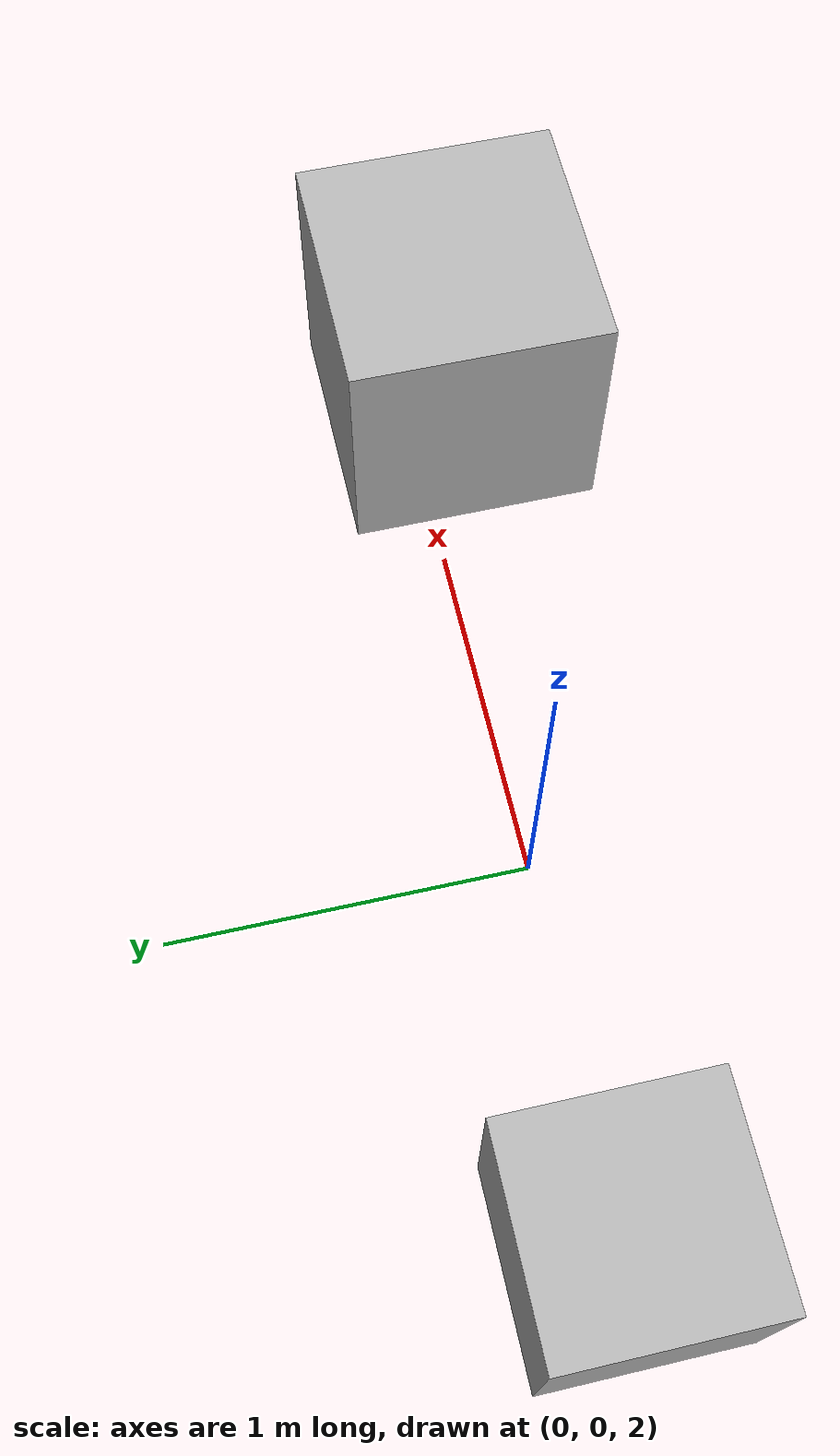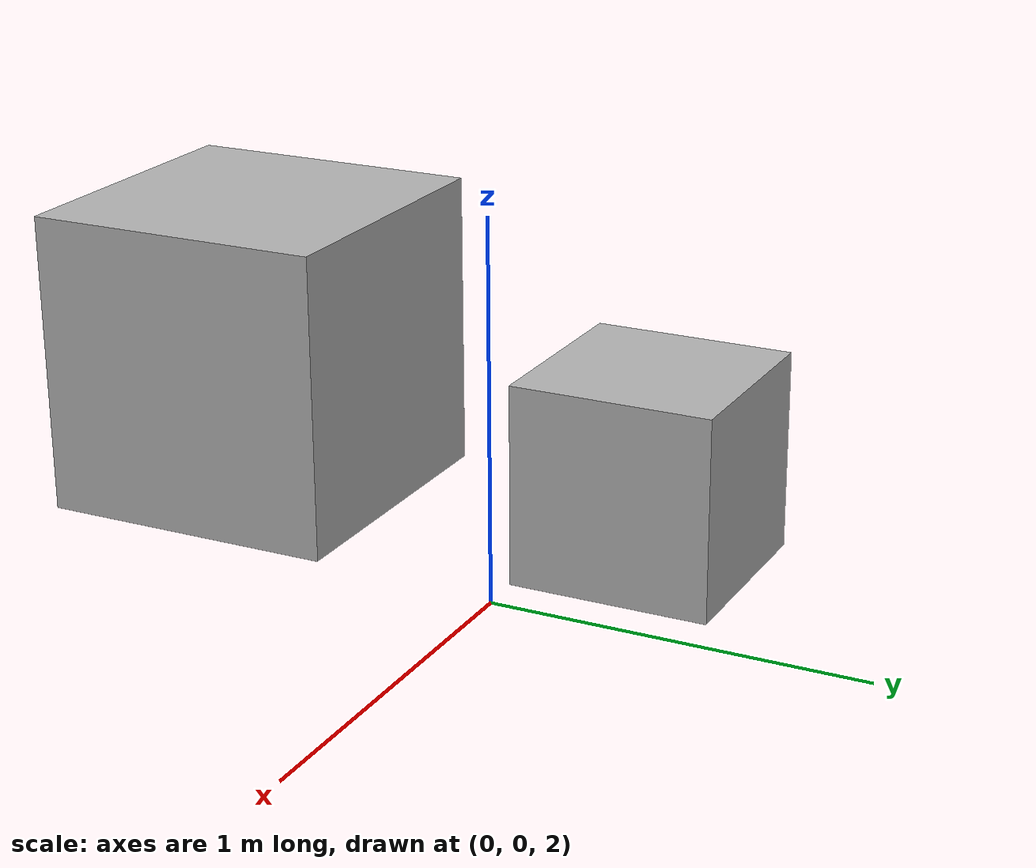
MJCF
<mujoco>
  <option gravity="0 0 -9.81" />
  <worldbody>
    <light diffuse="0.5 0.5 0.5" pos="0 0 5" dir="0 0 -1" />
    <body name="ground" pos="0 0 -10">
      <geom type="plane" size="30 30 0.1" rgba="0.7 0.7 0.7 1" />
    </body>
    <body name="mass_1" pos="-1 0 2">
      <geom type="box" size="0.3 0.3 0.3" mass="2" rgba="0.7 0.7 0.7 1" />
      <joint type="slide" axis="0 0 1" />
    </body>
    <body name="mass_2" pos="1 0 3">
      <geom type="box" size="0.3 0.3 0.3" mass="4" rgba="0.7 0.7 0.7 1" />
      <joint type="slide" axis="0 0 1" />
    </body>
  </worldbody>
</mujoco>
